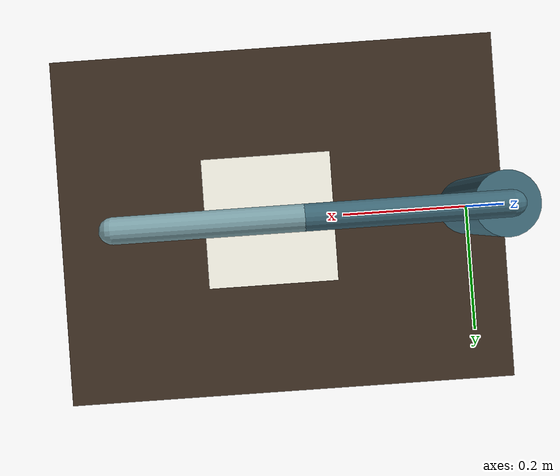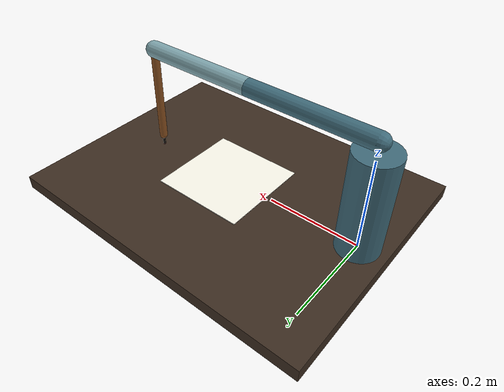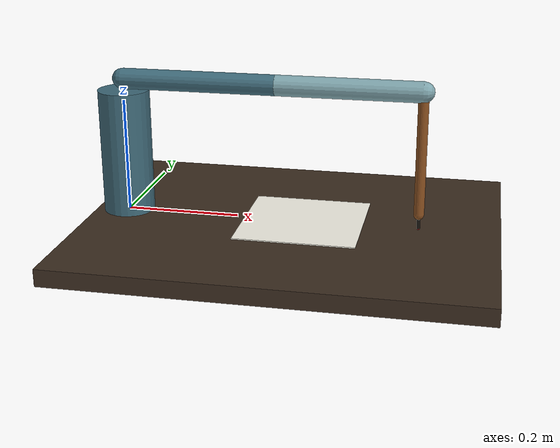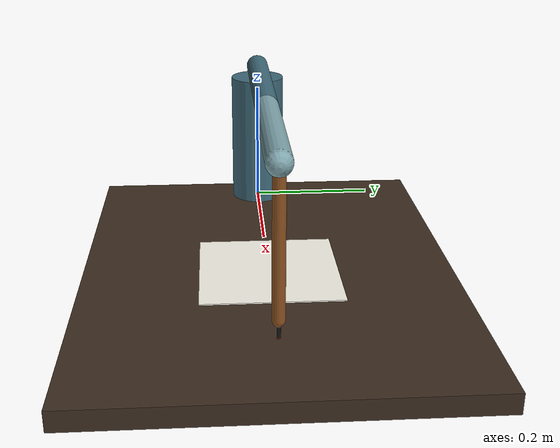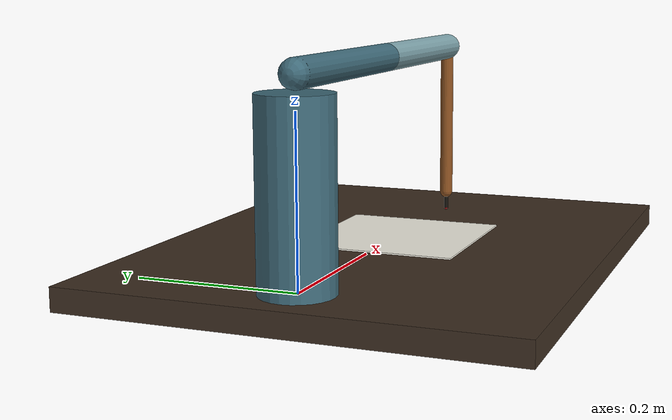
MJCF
<mujoco model="shodo_scara">
  <compiler angle="radian"/>
  <option timestep="0.002" gravity="0 0 -9.81" integrator="implicitfast"/>
  <default>
    <joint damping="2" armature="0.02"/>
    <geom type="capsule" size="0.018" density="700" contype="0" conaffinity="0" rgba="0.25 0.42 0.48 1"/>
  </default>
  <visual><global offwidth="640" offheight="480"/></visual>
  <worldbody>
    <light pos="0.2 -0.3 1.5" diffuse="0.9 0.9 0.9"/>
    <camera name="overview" pos="0.8 -0.8 0.8" xyaxes="0.8 0.6 0 -0.35 0.47 0.81"/>
    <geom name="desk" type="box" pos="0.3 0 -0.018" size="0.36 0.28 0.015" rgba="0.24 0.18 0.13 1"/>
    <geom name="paper" type="box" pos="0.32 0 -0.001" size="0.105 0.105 0.001" rgba="0.98 0.97 0.92 1"/>
    <geom type="cylinder" pos="0 0 0.11" size="0.045 0.11"/>
    <body name="upper" pos="0 0 0.24">
      <joint name="shoulder" axis="0 0 1" range="-2.8 2.8"/>
      <geom fromto="0 0 0 0.27 0 0"/>
      <body name="forearm" pos="0.27 0 0">
        <joint name="elbow" axis="0 0 1" range="0.1 2.9"/>
        <geom fromto="0 0 0 0.25 0 0" rgba="0.5 0.65 0.68 1"/>
        <body name="brush" pos="0.25 0 0">
          <joint name="lift" type="slide" axis="0 0 1" range="-0.03 0.08" damping="8"/>
          <geom fromto="0 0 0 0 0 -0.215" size="0.009" rgba="0.55 0.32 0.13 1"/>
          <geom name="nib" fromto="0 0 -0.215 0 0 -0.24" size="0.003" rgba="0.08 0.07 0.05 1"/>
          <site name="tip" pos="0 0 -0.24" size="0.003" rgba="0.8 0.1 0.1 1"/>
        </body>
      </body>
    </body>
  </worldbody>
  <actuator>
    <position joint="shoulder" kp="800" kv="45" ctrlrange="-2.8 2.8" forcerange="-80 80"/>
    <position joint="elbow" kp="600" kv="30" ctrlrange="0.1 2.9" forcerange="-60 60"/>
    <position joint="lift" kp="3000" kv="65" ctrlrange="-0.03 0.08" forcerange="-80 80"/>
  </actuator>
</mujoco>
